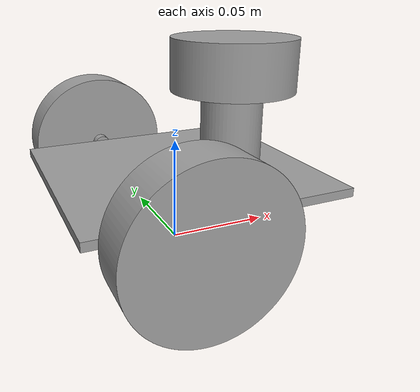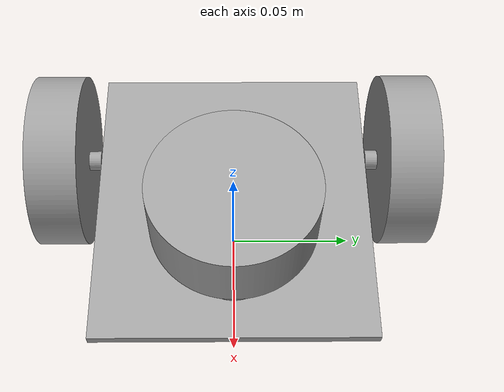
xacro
<?xml version="1.0" ?>
<robot name="fusion2urdf" xmlns:xacro="http://www.ros.org/wiki/xacro">

<xacro:include filename="$(find fusion2urdf_description)/urdf/materials.xacro" />
<xacro:include filename="$(find fusion2urdf_description)/urdf/fusion2urdf.trans" />
<xacro:include filename="$(find fusion2urdf_description)/urdf/fusion2urdf.gazebo" />
<link name="base_link">
  <inertial>
    <origin xyz="0.012647843960679934 1.2902170503895848e-16 0.03871634926681479" rpy="0 0 0"/>
    <mass value="0.6857976281413665"/>
    <inertia ixx="0.000555" iyy="0.000805" izz="0.001137" ixy="0.0" iyz="-0.0" ixz="-3.2e-05"/>
  </inertial>
  <visual>
    <origin xyz="0 0 0" rpy="0 0 0"/>
    <geometry>
      <mesh filename="package://fusion2urdf_description/meshes/base_link.stl" scale="0.001 0.001 0.001"/>
    </geometry>
    <material name="steel_satin"/>
  </visual>
  <collision>
    <origin xyz="0 0 0" rpy="0 0 0"/>
    <geometry>
      <mesh filename="package://fusion2urdf_description/meshes/base_link.stl" scale="0.001 0.001 0.001"/>
    </geometry>
  </collision>
</link>

<link name="lidar_v1_1">
  <inertial>
    <origin xyz="-3.469446951953614e-18 -4.0208493750847415e-18 0.012499999999999997" rpy="0 0 0"/>
    <mass value="0.5548838024402972"/>
    <inertia ixx="0.000154" iyy="0.000154" izz="0.00025" ixy="-0.0" iyz="-0.0" ixz="0.0"/>
  </inertial>
  <visual>
    <origin xyz="-0.03 0.0 -0.072" rpy="0 0 0"/>
    <geometry>
      <mesh filename="package://fusion2urdf_description/meshes/lidar_v1_1.stl" scale="0.001 0.001 0.001"/>
    </geometry>
    <material name="steel_satin"/>
  </visual>
  <collision>
    <origin xyz="-0.03 0.0 -0.072" rpy="0 0 0"/>
    <geometry>
      <mesh filename="package://fusion2urdf_description/meshes/lidar_v1_1.stl" scale="0.001 0.001 0.001"/>
    </geometry>
  </collision>
</link>

<link name="r_wheel_v1_1">
  <inertial>
    <origin xyz="3.469446951953614e-18 -0.010000000000000009 4.76837160034993e-10" rpy="0 0 0"/>
    <mass value="0.6042068071016569"/>
    <inertia ixx="0.000205" iyy="0.00037" izz="0.000205" ixy="0.0" iyz="-0.0" ixz="0.0"/>
  </inertial>
  <visual>
    <origin xyz="0.02 0.06 -0.035" rpy="0 0 0"/>
    <geometry>
      <mesh filename="package://fusion2urdf_description/meshes/r_wheel_v1_1.stl" scale="0.001 0.001 0.001"/>
    </geometry>
    <material name="steel_satin"/>
  </visual>
  <collision>
    <origin xyz="0.02 0.06 -0.035" rpy="0 0 0"/>
    <geometry>
      <mesh filename="package://fusion2urdf_description/meshes/r_wheel_v1_1.stl" scale="0.001 0.001 0.001"/>
    </geometry>
  </collision>
</link>

<link name="l_wheel_v1_1">
  <inertial>
    <origin xyz="-2.98023213746168e-10 0.010000000000000009 9.983777971012131e-10" rpy="0 0 0"/>
    <mass value="0.6042068071016569"/>
    <inertia ixx="0.000205" iyy="0.00037" izz="0.000205" ixy="-0.0" iyz="0.0" ixz="0.0"/>
  </inertial>
  <visual>
    <origin xyz="0.02 -0.06 -0.035" rpy="0 0 0"/>
    <geometry>
      <mesh filename="package://fusion2urdf_description/meshes/l_wheel_v1_1.stl" scale="0.001 0.001 0.001"/>
    </geometry>
    <material name="steel_satin"/>
  </visual>
  <collision>
    <origin xyz="0.02 -0.06 -0.035" rpy="0 0 0"/>
    <geometry>
      <mesh filename="package://fusion2urdf_description/meshes/l_wheel_v1_1.stl" scale="0.001 0.001 0.001"/>
    </geometry>
  </collision>
</link>

<joint name="Rigid 3" type="fixed">
  <origin xyz="0.03 0.0 0.072" rpy="0 0 0"/>
  <parent link="base_link"/>
  <child link="lidar_v1_1"/>
</joint>

<joint name="Revolute 4" type="continuous">
  <origin xyz="-0.02 -0.06 0.035" rpy="0 0 0"/>
  <parent link="base_link"/>
  <child link="r_wheel_v1_1"/>
  <axis xyz="0.0 1.0 0.0"/>
</joint>

<joint name="Revolute 5" type="continuous">
  <origin xyz="-0.02 0.06 0.035" rpy="0 0 0"/>
  <parent link="base_link"/>
  <child link="l_wheel_v1_1"/>
  <axis xyz="0.0 1.0 0.0"/>
</joint>

</robot>

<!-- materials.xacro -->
<robot name="fusion2urdf" xmlns:xacro="http://www.ros.org/wiki/xacro" >

<material name="silver_default">
  <color rgba="0.700 0.700 0.700 1.000"/>
</material>
<material name="steel_satin">
  <color rgba="0.6274509803921569 0.6274509803921569 0.6274509803921569 1.0"/>
</material>

</robot>

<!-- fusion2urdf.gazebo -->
<robot name="fusion2urdf" xmlns:xacro="http://www.ros.org/wiki/xacro" >

<xacro:property name="body_color" value="Gazebo/Red" />
<xacro:property name="wheel_color" value="Gazebo/Blue" />
<xacro:property name="lidar_color" value="Gazebo/Green" />

<gazebo>
  <plugin name="control" filename="libgazebo_ros_control.so"/>
</gazebo>
<gazebo reference="base_link">
  <material>${body_color}</material>
  <mu1>0.2</mu1>
  <mu2>0.2</mu2>
  <selfCollide>true</selfCollide>
  <gravity>true</gravity>
</gazebo>

<gazebo reference="lidar_v1_1">
  <material>${lidar_color}</material>
  <mu1>0.2</mu1>
  <mu2>0.2</mu2>
  <selfCollide>true</selfCollide>
</gazebo>

<gazebo reference="l_wheel_v1_1">
  <material>${wheel_color}</material>
  <mu1>150</mu1>
  <mu2>150</mu2>
  <selfCollide>true</selfCollide>
</gazebo>

<gazebo reference="r_wheel_v1_1">
  <material>${wheel_color}</material>
  <mu1>150</mu1>
  <mu2>150</mu2>
  <selfCollide>true</selfCollide>
</gazebo>

<gazebo>
  <plugin name="differential_drive_controller" filename="libgazebo_ros_diff_drive.so">

    <!-- Plugin update rate in Hz -->
    <updateRate>50</updateRate>

    <!-- Name of left joint, defaults to `left_joint` -->
    <leftJoint>Revolute 4</leftJoint>

    <!-- Name of right joint, defaults to `right_joint` -->
    <rightJoint>Revolute 5</rightJoint>

    <!-- Wheel acceleration, in rad/s^2, defaults to 0.0 rad/s^2 -->
    <wheelAcceleration>1.0</wheelAcceleration>

    <!-- Maximum torque which the wheels can produce, in Nm, defaults to 5 Nm -->
    <wheelTorque>20</wheelTorque>

    <!-- Topic to receive geometry_msgs/Twist message commands, defaults to `cmd_vel` -->
    <commandTopic>cmd_vel</commandTopic>

    <!-- Topic to publish nav_msgs/Odometry messages, defaults to `odom` -->
    <odometryTopic>odom</odometryTopic>

    <!-- Odometry frame, defaults to `odom` -->
    <odometryFrame>odom</odometryFrame>

    <!-- Robot frame to calculate odometry from, defaults to `base_footprint` -->
    <robotBaseFrame>base_link</robotBaseFrame>

    <!-- Odometry source, 0 for ENCODER, 1 for WORLD, defaults to WORLD -->
    <odometrySource>1</odometrySource>

    <!-- Set to true to publish transforms for the wheel links, defaults to false -->
    <publishWheelTF>true</publishWheelTF>

    <!-- Set to true to publish transforms for the odometry, defaults to true -->
    <publishOdom>true</publishOdom>

    <!-- Set to true to publish sensor_msgs/JointState on /joint_states for the wheel joints, defaults to false -->
    <publishWheelJointState>true</publishWheelJointState>

    <!-- Set to true to swap right and left wheels, defaults to true -->
    <legacyMode>true</legacyMode>
  </plugin>
</gazebo>
</robot>
